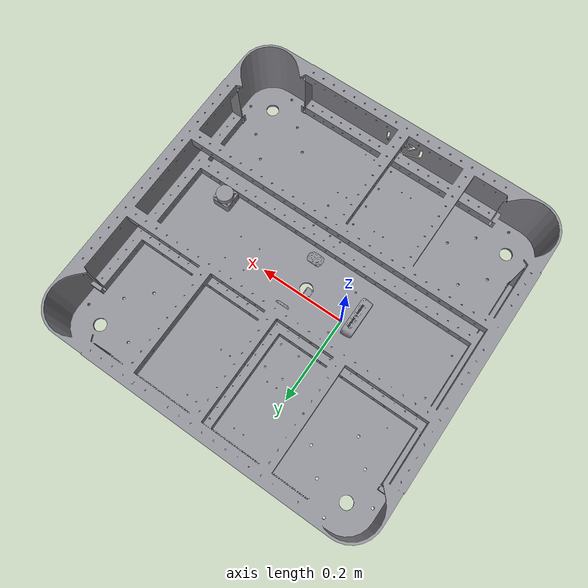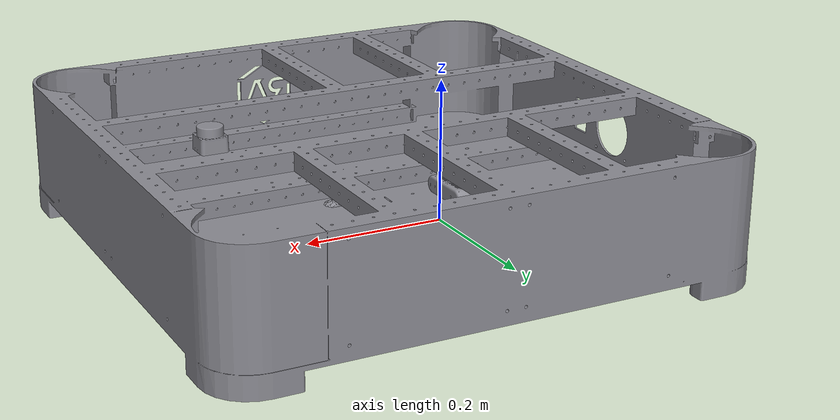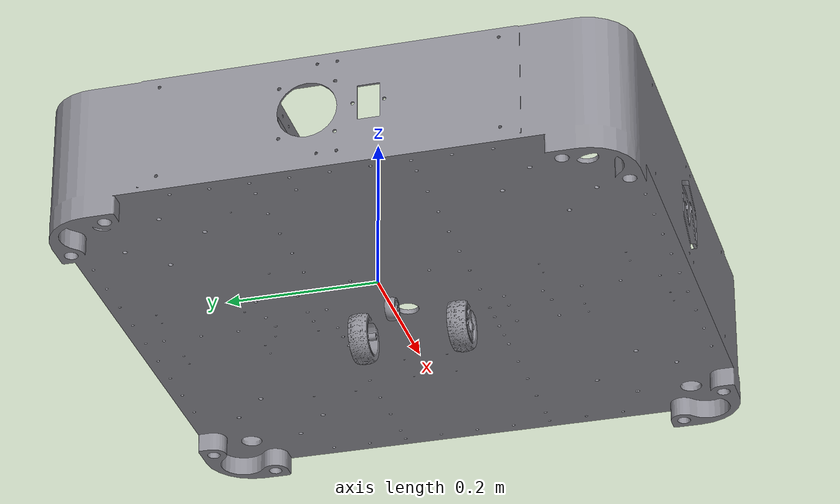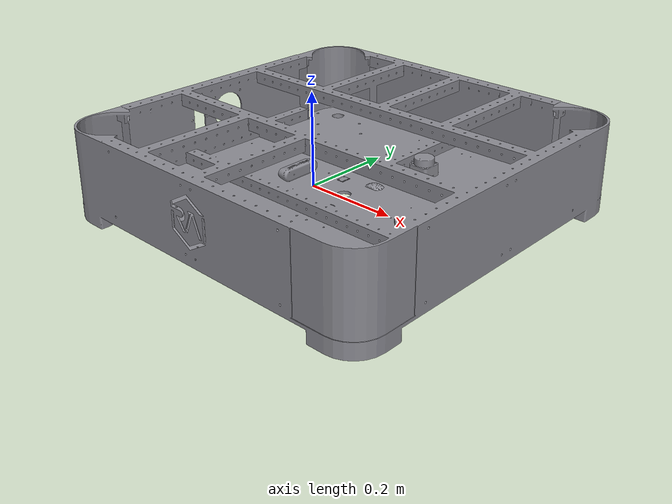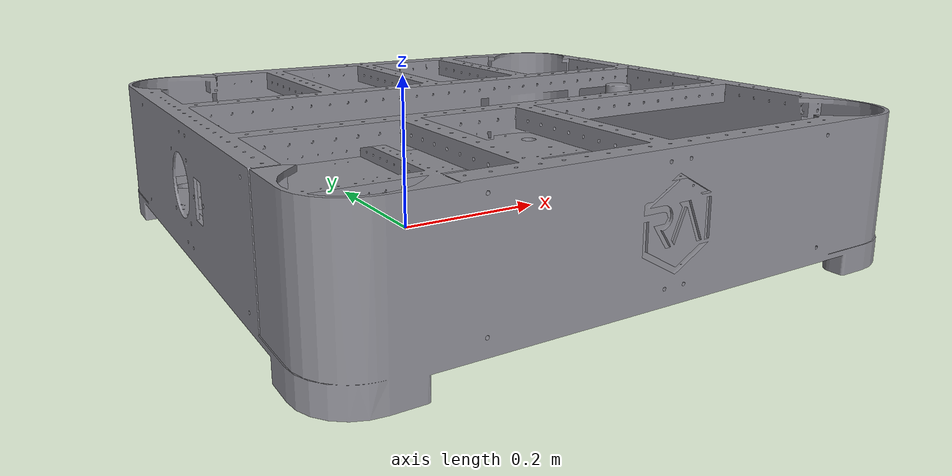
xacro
<?xml version="1.0" ?>
<!-- Generated using onshape-to-robot -->
<!-- Onshape https://cad.onshape.com/documents/e9064c6d5193bddefb68f171/w/f2e231ecb4ac8838a659f7c8/e/effd3c5c89f281068763c18d -->
<robot name="goomba_bot">

  <!-- Link chassis -->
  <link name="chassis">
    <inertial>
      <origin xyz="0.0970948 -0.0126647 0.0115809" rpy="0 0 0"/>
      <mass value="0.583556"/>
      <inertia ixx="0.000719834" ixy="1.05237e-05" ixz="-8.32166e-05" iyy="0.00138714" iyz="1.31908e-05" izz="0.00170827"/>
    </inertial>
    <!-- Part chassis_parts -->
    <visual>
      <origin xyz="0.0970948 -0.0126647 0.0115809" rpy="0 -0 0"/>
      <geometry>
        <mesh filename="file:///home/ws/src/goomba_bot/assets/merged/chassis_visual.stl"/>
      </geometry>
      <material name="chassis_parts_material">
        <color rgba="0.55 0.55 0.58 1"/>
      </material>
    </visual>
    <collision>
      <origin xyz="0.0970948 -0.0126647 0.0115809" rpy="0 -0 0"/>
      <geometry>
        <mesh filename="file:///home/ws/src/goomba_bot/assets/merged/chassis_collision.stl"/>
      </geometry>
    </collision>
  </link>
  <!-- Frame base (dummy link + fixed joint) -->
  <!-- Link left_wheel -->
  <link name="left_wheel">
    <inertial>
      <origin xyz="-1.8653e-08 1.32e-09 -0.018127" rpy="0 0 0"/>
      <mass value="0.0296221"/>
      <inertia ixx="1.19513e-05" ixy="-1e-12" ixz="0" iyy="1.19507e-05" iyz="-0" izz="2.00869e-05"/>
    </inertial>
    <!-- Part left_wheel_parts -->
    <visual>
      <origin xyz="-1.8653e-08 1.32e-09 -0.018127" rpy="1.5708 -0 -2.55637"/>
      <geometry>
        <mesh filename="file:///home/ws/src/goomba_bot/assets/merged/left_wheel_visual.stl"/>
      </geometry>
      <material name="left_wheel_parts_material">
        <color rgba="0.55 0.55 0.58 1"/>
      </material>
    </visual>
    <collision>
      <origin xyz="-1.8653e-08 1.32e-09 -0.018127" rpy="1.5708 -0 -2.55637"/>
      <geometry>
        <mesh filename="file:///home/ws/src/goomba_bot/assets/merged/left_wheel_collision.stl"/>
      </geometry>
    </collision>
  </link>
  <!-- Joint from chassis to left_wheel -->
  <joint name="base_to_left_wheel" type="continuous">
    <origin xyz="0.118533 -0.0607433 -0.0107495" rpy="1.5708 0.585227 3.14159"/>
    <parent link="chassis"/>
    <child link="left_wheel"/>
    <axis xyz="0 0 1"/>
  </joint>
  <!-- Link right_wheel -->
  <link name="right_wheel">
    <inertial>
      <origin xyz="-1.8653e-08 1.32e-09 -0.018127" rpy="0 0 0"/>
      <mass value="0.0296221"/>
      <inertia ixx="1.19513e-05" ixy="-1e-12" ixz="0" iyy="1.19507e-05" iyz="-0" izz="2.00869e-05"/>
    </inertial>
    <!-- Part right_wheel_parts -->
    <visual>
      <origin xyz="-1.8653e-08 1.32e-09 -0.018127" rpy="-1.5708 0 -1.5708"/>
      <geometry>
        <mesh filename="file:///home/ws/src/goomba_bot/assets/merged/right_wheel_visual.stl"/>
      </geometry>
      <material name="right_wheel_parts_material">
        <color rgba="0.55 0.55 0.58 1"/>
      </material>
    </visual>
    <collision>
      <origin xyz="-1.8653e-08 1.32e-09 -0.018127" rpy="-1.5708 0 -1.5708"/>
      <geometry>
        <mesh filename="file:///home/ws/src/goomba_bot/assets/merged/right_wheel_collision.stl"/>
      </geometry>
    </collision>
  </link>
  <!-- Joint from chassis to right_wheel -->
  <joint name="base_to_right_wheel" type="continuous">
    <origin xyz="0.118569 0.0354816 -0.0107495" rpy="1.5708 -1.5708 0"/>
    <parent link="chassis"/>
    <child link="right_wheel"/>
    <axis xyz="0 0 1"/>
  </joint>
  <!-- Link lidar -->
  <link name="lidar">
    <inertial>
      <origin xyz="-4.30087e-05 -5.49176e-05 -0.0152796" rpy="0 0 0"/>
      <mass value="0.0471736"/>
      <inertia ixx="8.91774e-06" ixy="1.16237e-07" ixz="-6.555e-09" iyy="9.00186e-06" iyz="6.1599e-08" izz="9.70007e-06"/>
    </inertial>
    <!-- Part lidar_parts -->
    <visual>
      <origin xyz="-4.30087e-05 -5.49176e-05 -0.0152796" rpy="3.14159 -0 0"/>
      <geometry>
        <mesh filename="file:///home/ws/src/goomba_bot/assets/merged/lidar_visual.stl"/>
      </geometry>
      <material name="lidar_parts_material">
        <color rgba="0.55 0.55 0.58 1"/>
      </material>
    </visual>
    <collision>
      <origin xyz="-4.30087e-05 -5.49176e-05 -0.0152796" rpy="3.14159 -0 0"/>
      <geometry>
        <mesh filename="file:///home/ws/src/goomba_bot/assets/merged/lidar_collision.stl"/>
      </geometry>
    </collision>
  </link>
  <!-- Joint from chassis to lidar -->
  <joint name="base_to_lidar" type="fixed">
    <origin xyz="0.157313 -0.0226586 0.0636901" rpy="-3.14159 -0 0"/>
    <parent link="chassis"/>
    <child link="lidar"/>
    <axis xyz="0 0 1"/>
  </joint>
  <!-- Link imu -->
  <link name="imu">
    <inertial>
      <origin xyz="0.00483974 -0.00755805 -0.0005" rpy="0 0 0"/>
      <mass value="0.00498952"/>
      <inertia ixx="1.65735e-07" ixy="5e-12" ixz="0" iyy="8.9881e-08" iyz="-0" izz="2.54784e-07"/>
    </inertial>
    <!-- Part imu_parts -->
    <visual>
      <origin xyz="0.00483974 -0.00755805 -0.0005" rpy="-3.14159 -0 -0"/>
      <geometry>
        <mesh filename="file:///home/ws/src/goomba_bot/assets/merged/imu_visual.stl"/>
      </geometry>
      <material name="imu_parts_material">
        <color rgba="0.55 0.55 0.58 1"/>
      </material>
    </visual>
    <collision>
      <origin xyz="0.00483974 -0.00755805 -0.0005" rpy="-3.14159 -0 -0"/>
      <geometry>
        <mesh filename="file:///home/ws/src/goomba_bot/assets/merged/imu_collision.stl"/>
      </geometry>
    </collision>
  </link>
  <!-- Joint from chassis to imu -->
  <joint name="base_to_imu" type="fixed">
    <origin xyz="0.080638 -0.00958239 0.0418901" rpy="3.14159 -0 0"/>
    <parent link="chassis"/>
    <child link="imu"/>
    <axis xyz="0 0 1"/>
  </joint>
  <!-- Link realsense -->
  <link name="realsense">
    <inertial>
      <origin xyz="0.022747 6.06224e-05 -0.0119511" rpy="0 0 0"/>
      <mass value="0.0721212"/>
      <inertia ixx="6.65208e-06" ixy="4.72e-10" ixz="1.53827e-07" iyy="4.70057e-05" iyz="-1.936e-09" izz="4.65739e-05"/>
    </inertial>
    <!-- Part realsense_parts -->
    <visual>
      <origin xyz="0.022747 6.06224e-05 -0.0119511" rpy="-1.5708 -1.5708 0"/>
      <geometry>
        <mesh filename="file:///home/ws/src/goomba_bot/assets/merged/realsense_visual.stl"/>
      </geometry>
      <material name="realsense_parts_material">
        <color rgba="0.55 0.55 0.58 1"/>
      </material>
    </visual>
    <collision>
      <origin xyz="0.022747 6.06224e-05 -0.0119511" rpy="-1.5708 -1.5708 0"/>
      <geometry>
        <mesh filename="file:///home/ws/src/goomba_bot/assets/merged/realsense_collision.stl"/>
      </geometry>
    </collision>
  </link>
  <!-- Joint from chassis to realsense -->
  <joint name="base_to_realsense" type="fixed">
    <origin xyz="-0.0136864 -0.0388416 0.0337901" rpy="1.5708 0 1.5708"/>
    <parent link="chassis"/>
    <child link="realsense"/>
    <axis xyz="0 0 1"/>
  </joint>
  <!-- Link caster_wheel -->
  <link name="caster_wheel">
    <inertial>
      <origin xyz="0 0 -0" rpy="0 0 0"/>
      <mass value="0.00608217"/>
      <inertia ixx="4.60012e-07" ixy="0" ixz="0" iyy="4.60012e-07" iyz="-0" izz="7.76391e-07"/>
    </inertial>
    <!-- Part caster_wheel_parts -->
    <visual>
      <origin xyz="0 0 -0" rpy="1.5708 0 -3.14159"/>
      <geometry>
        <mesh filename="file:///home/ws/src/goomba_bot/assets/merged/caster_wheel_visual.stl"/>
      </geometry>
      <material name="caster_wheel_parts_material">
        <color rgba="0.55 0.55 0.58 1"/>
      </material>
    </visual>
    <collision>
      <origin xyz="0 0 -0" rpy="1.5708 0 -3.14159"/>
      <geometry>
        <mesh filename="file:///home/ws/src/goomba_bot/assets/merged/caster_wheel_collision.stl"/>
      </geometry>
    </collision>
  </link>
  <!-- Joint from chassis to caster_wheel -->
  <joint name="base_to_caster_wheel" type="fixed">
    <origin xyz="0.0194599 -0.0131333 -0.0300099" rpy="1.5708 0 -3.14159"/>
    <parent link="chassis"/>
    <child link="caster_wheel"/>
    <axis xyz="0 0 1"/>
  </joint>

  <gazebo reference="caster_wheel">
    <material>Gazebo/Black</material>
    <mu1 value="0.001"/>
    <mu2 value="0.001"/>
  </gazebo>

</robot>
